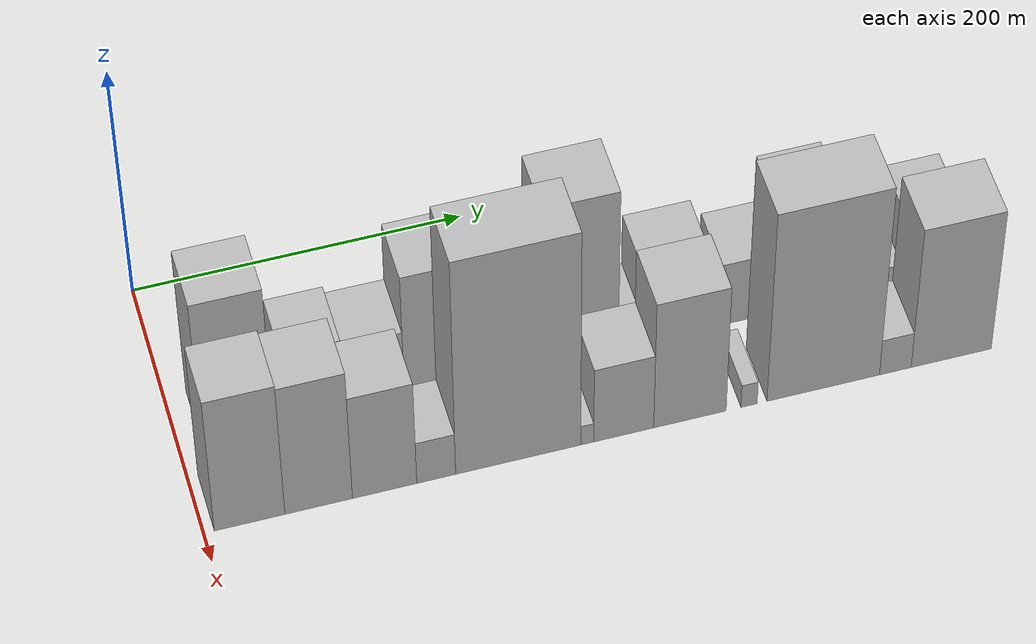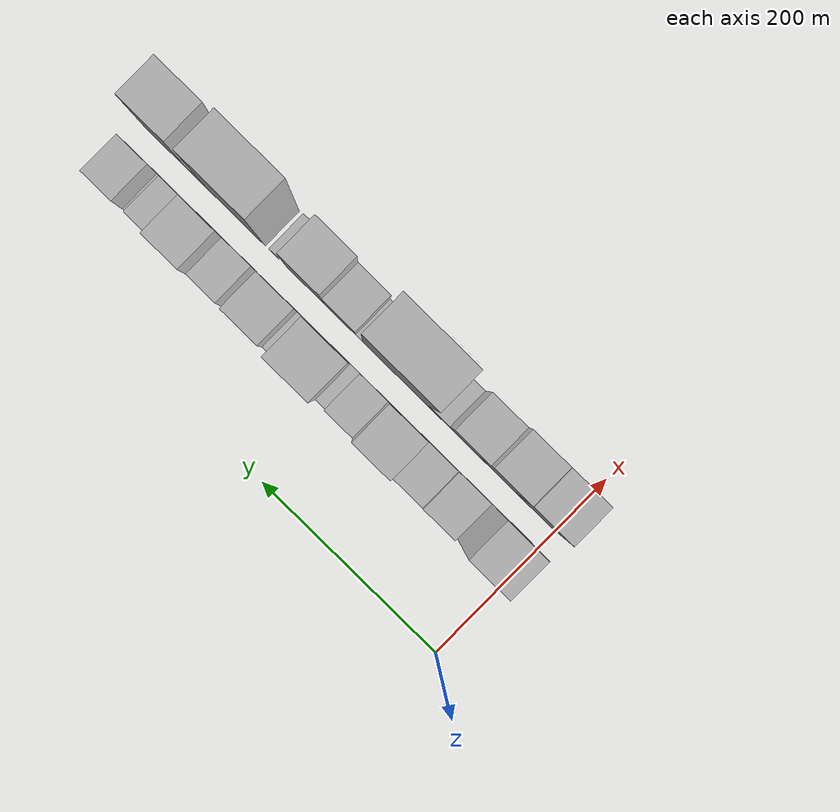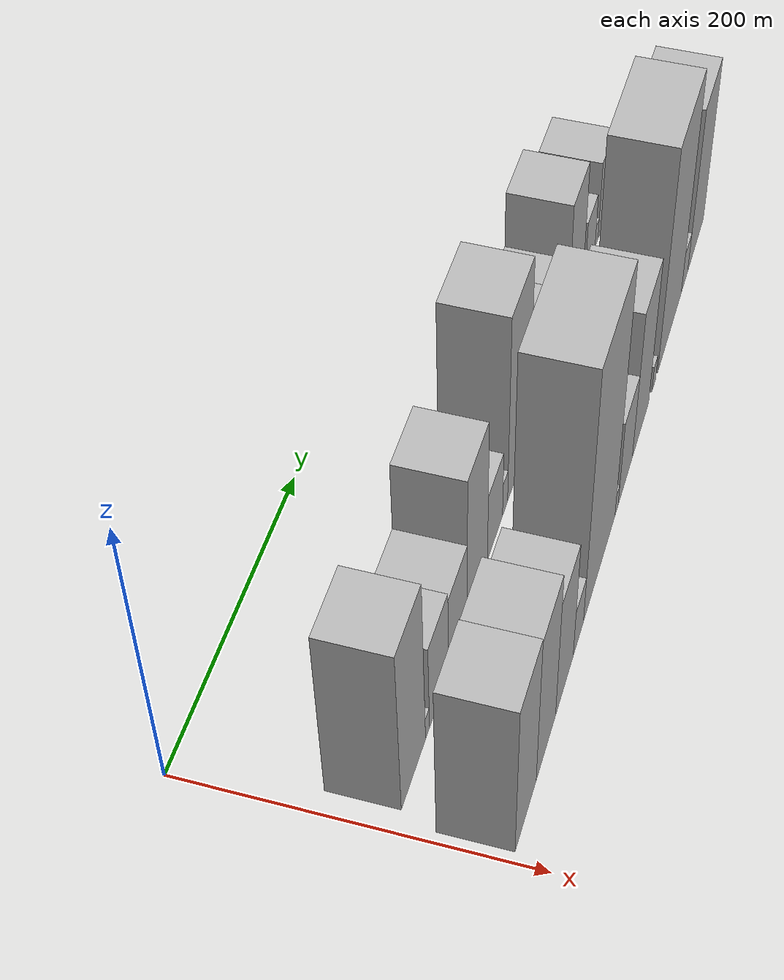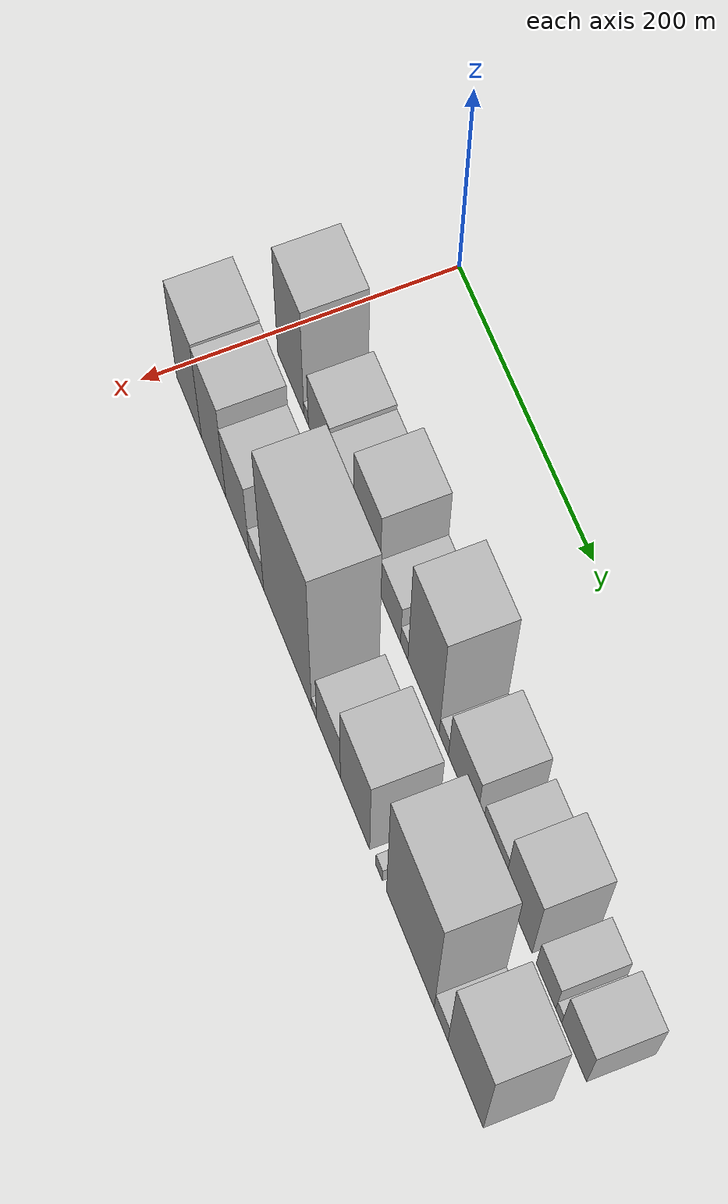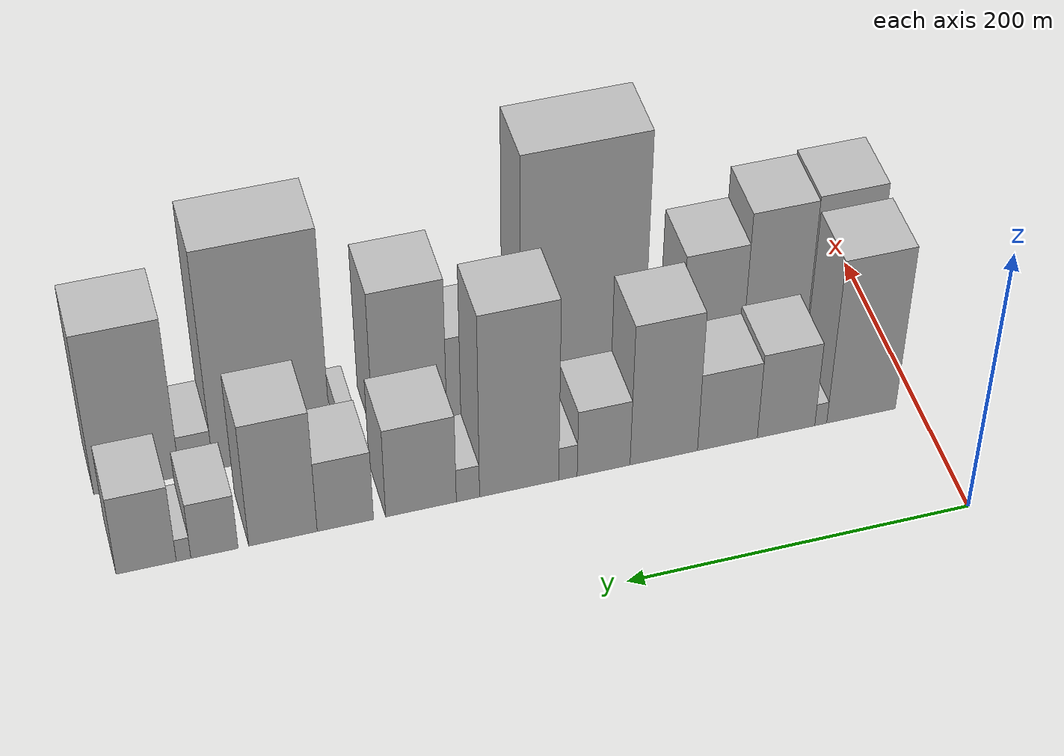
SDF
<sdf version="1.6">
 <world name="default">
  <model name="building_12">
   <static>1</static>
   <pose>100.0000 34.3279 0 0.000000 0.000000 0.000000</pose>
   <link name="link">
    <pose>0 0 66.00 0 0 0</pose>
    <collision name="collision"><geometry><box><size>40.0000 42.1152 132.0000</size></box></geometry></collision>
    <visual name="visual">
     <cast_shadows>0</cast_shadows>
     <geometry><box><size>40.0000 42.1152 132.0000</size></box></geometry>
     <material>
      <script>
       <uri>model://HANNAS_wall/materials/scripts</uri>
       <uri>model://HANNAS_wall/materials/textures</uri>
       <name>vrc/HANNAS_wall</name>
      </script>
     </material>
    </visual>
   </link>
  </model>
  <model name="building_13">
   <static>1</static>
   <pose>100.0000 59.0370 0 0.000000 0.000000 0.000000</pose>
   <link name="link">
    <pose>0 0 9.00 0 0 0</pose>
    <collision name="collision"><geometry><box><size>40.0000 7.3032 18.0000</size></box></geometry></collision>
    <visual name="visual">
     <cast_shadows>0</cast_shadows>
     <geometry><box><size>40.0000 7.3032 18.0000</size></box></geometry>
     <material>
      <script>
       <uri>model://HANNAS_wall/materials/scripts</uri>
       <uri>model://HANNAS_wall/materials/textures</uri>
       <name>vrc/HANNAS_wall</name>
      </script>
     </material>
    </visual>
   </link>
  </model>
  <model name="building_14">
   <static>1</static>
   <pose>100.0000 80.1584 0 0.000000 0.000000 0.000000</pose>
   <link name="link">
    <pose>0 0 34.50 0 0 0</pose>
    <collision name="collision"><geometry><box><size>40.0000 34.9397 69.0000</size></box></geometry></collision>
    <visual name="visual">
     <cast_shadows>0</cast_shadows>
     <geometry><box><size>40.0000 34.9397 69.0000</size></box></geometry>
     <material>
      <script>
       <uri>model://HANNAS_wall/materials/scripts</uri>
       <uri>model://HANNAS_wall/materials/textures</uri>
       <name>vrc/HANNAS_wall</name>
      </script>
     </material>
    </visual>
   </link>
  </model>
  <model name="building_15">
   <static>1</static>
   <pose>100.0000 115.6717 0 0.000000 0.000000 0.000000</pose>
   <link name="link">
    <pose>0 0 31.50 0 0 0</pose>
    <collision name="collision"><geometry><box><size>40.0000 36.0867 63.0000</size></box></geometry></collision>
    <visual name="visual">
     <cast_shadows>0</cast_shadows>
     <geometry><box><size>40.0000 36.0867 63.0000</size></box></geometry>
     <material>
      <script>
       <uri>model://HANNAS_wall/materials/scripts</uri>
       <uri>model://HANNAS_wall/materials/textures</uri>
       <name>vrc/HANNAS_wall</name>
      </script>
     </material>
    </visual>
   </link>
  </model>
  <model name="building_16">
   <static>1</static>
   <pose>100.0000 153.8716 0 0.000000 0.000000 0.000000</pose>
   <link name="link">
    <pose>0 0 57.00 0 0 0</pose>
    <collision name="collision"><geometry><box><size>40.0000 40.3131 114.0000</size></box></geometry></collision>
    <visual name="visual">
     <cast_shadows>0</cast_shadows>
     <geometry><box><size>40.0000 40.3131 114.0000</size></box></geometry>
     <material>
      <script>
       <uri>model://HANNAS_wall/materials/scripts</uri>
       <uri>model://HANNAS_wall/materials/textures</uri>
       <name>vrc/HANNAS_wall</name>
      </script>
     </material>
    </visual>
   </link>
  </model>
  <model name="building_17">
   <static>1</static>
   <pose>100.0000 189.6926 0 0.000000 0.000000 0.000000</pose>
   <link name="link">
    <pose>0 0 27.00 0 0 0</pose>
    <collision name="collision"><geometry><box><size>40.0000 31.3289 54.0000</size></box></geometry></collision>
    <visual name="visual">
     <cast_shadows>0</cast_shadows>
     <geometry><box><size>40.0000 31.3289 54.0000</size></box></geometry>
     <material>
      <script>
       <uri>model://HANNAS_wall/materials/scripts</uri>
       <uri>model://HANNAS_wall/materials/textures</uri>
       <name>vrc/HANNAS_wall</name>
      </script>
     </material>
    </visual>
   </link>
  </model>
  <model name="building_18">
   <static>1</static>
   <pose>100.0000 210.8016 0 0.000000 0.000000 0.000000</pose>
   <link name="link">
    <pose>0 0 13.50 0 0 0</pose>
    <collision name="collision"><geometry><box><size>40.0000 10.8892 27.0000</size></box></geometry></collision>
    <visual name="visual">
     <cast_shadows>0</cast_shadows>
     <geometry><box><size>40.0000 10.8892 27.0000</size></box></geometry>
     <material>
      <script>
       <uri>model://HANNAS_wall/materials/scripts</uri>
       <uri>model://HANNAS_wall/materials/textures</uri>
       <name>vrc/HANNAS_wall</name>
      </script>
     </material>
    </visual>
   </link>
  </model>
  <model name="building_19">
   <static>1</static>
   <pose>100.0000 239.4249 0 0.000000 0.000000 0.000000</pose>
   <link name="link">
    <pose>0 0 73.50 0 0 0</pose>
    <collision name="collision"><geometry><box><size>40.0000 46.3573 147.0000</size></box></geometry></collision>
    <visual name="visual">
     <cast_shadows>0</cast_shadows>
     <geometry><box><size>40.0000 46.3573 147.0000</size></box></geometry>
     <material>
      <script>
       <uri>model://HANNAS_wall/materials/scripts</uri>
       <uri>model://HANNAS_wall/materials/textures</uri>
       <name>vrc/HANNAS_wall</name>
      </script>
     </material>
    </visual>
   </link>
  </model>
  <model name="building_20">
   <static>1</static>
   <pose>100.0000 269.3526 0 0.000000 0.000000 0.000000</pose>
   <link name="link">
    <pose>0 0 13.50 0 0 0</pose>
    <collision name="collision"><geometry><box><size>40.0000 13.4980 27.0000</size></box></geometry></collision>
    <visual name="visual">
     <cast_shadows>0</cast_shadows>
     <geometry><box><size>40.0000 13.4980 27.0000</size></box></geometry>
     <material>
      <script>
       <uri>model://HANNAS_wall/materials/scripts</uri>
       <uri>model://HANNAS_wall/materials/textures</uri>
       <name>vrc/HANNAS_wall</name>
      </script>
     </material>
    </visual>
   </link>
  </model>
  <model name="building_21">
   <static>1</static>
   <pose>100.0000 296.5154 0 0.000000 0.000000 0.000000</pose>
   <link name="link">
    <pose>0 0 36.00 0 0 0</pose>
    <collision name="collision"><geometry><box><size>40.0000 40.8278 72.0000</size></box></geometry></collision>
    <visual name="visual">
     <cast_shadows>0</cast_shadows>
     <geometry><box><size>40.0000 40.8278 72.0000</size></box></geometry>
     <material>
      <script>
       <uri>model://HANNAS_wall/materials/scripts</uri>
       <uri>model://HANNAS_wall/materials/textures</uri>
       <name>vrc/HANNAS_wall</name>
      </script>
     </material>
    </visual>
   </link>
  </model>
  <model name="building_22">
   <static>1</static>
   <pose>100.0000 340.0152 0 0.000000 0.000000 0.000000</pose>
   <link name="link">
    <pose>0 0 28.50 0 0 0</pose>
    <collision name="collision"><geometry><box><size>40.0000 32.1717 57.0000</size></box></geometry></collision>
    <visual name="visual">
     <cast_shadows>0</cast_shadows>
     <geometry><box><size>40.0000 32.1717 57.0000</size></box></geometry>
     <material>
      <script>
       <uri>model://HANNAS_wall/materials/scripts</uri>
       <uri>model://HANNAS_wall/materials/textures</uri>
       <name>vrc/HANNAS_wall</name>
      </script>
     </material>
    </visual>
   </link>
  </model>
  <model name="building_23">
   <static>1</static>
   <pose>100.0000 375.5228 0 0.000000 0.000000 0.000000</pose>
   <link name="link">
    <pose>0 0 49.50 0 0 0</pose>
    <collision name="collision"><geometry><box><size>40.0000 38.8435 99.0000</size></box></geometry></collision>
    <visual name="visual">
     <cast_shadows>0</cast_shadows>
     <geometry><box><size>40.0000 38.8435 99.0000</size></box></geometry>
     <material>
      <script>
       <uri>model://HANNAS_wall/materials/scripts</uri>
       <uri>model://HANNAS_wall/materials/textures</uri>
       <name>vrc/HANNAS_wall</name>
      </script>
     </material>
    </visual>
   </link>
  </model>
  <model name="building_24">
   <static>1</static>
   <pose>100.0000 414.2215 0 0.000000 0.000000 0.000000</pose>
   <link name="link">
    <pose>0 0 22.50 0 0 0</pose>
    <collision name="collision"><geometry><box><size>40.0000 26.5538 45.0000</size></box></geometry></collision>
    <visual name="visual">
     <cast_shadows>0</cast_shadows>
     <geometry><box><size>40.0000 26.5538 45.0000</size></box></geometry>
     <material>
      <script>
       <uri>model://HANNAS_wall/materials/scripts</uri>
       <uri>model://HANNAS_wall/materials/textures</uri>
       <name>vrc/HANNAS_wall</name>
      </script>
     </material>
    </visual>
   </link>
  </model>
  <model name="building_25">
   <static>1</static>
   <pose>100.0000 431.5704 0 0.000000 0.000000 0.000000</pose>
   <link name="link">
    <pose>0 0 9.00 0 0 0</pose>
    <collision name="collision"><geometry><box><size>40.0000 8.1441 18.0000</size></box></geometry></collision>
    <visual name="visual">
     <cast_shadows>0</cast_shadows>
     <geometry><box><size>40.0000 8.1441 18.0000</size></box></geometry>
     <material>
      <script>
       <uri>model://HANNAS_wall/materials/scripts</uri>
       <uri>model://HANNAS_wall/materials/textures</uri>
       <name>vrc/HANNAS_wall</name>
      </script>
     </material>
    </visual>
   </link>
  </model>
  <model name="building_26">
   <static>1</static>
   <pose>100.0000 452.4295 0 0.000000 0.000000 0.000000</pose>
   <link name="link">
    <pose>0 0 31.50 0 0 0</pose>
    <collision name="collision"><geometry><box><size>40.0000 33.5740 63.0000</size></box></geometry></collision>
    <visual name="visual">
     <cast_shadows>0</cast_shadows>
     <geometry><box><size>40.0000 33.5740 63.0000</size></box></geometry>
     <material>
      <script>
       <uri>model://HANNAS_wall/materials/scripts</uri>
       <uri>model://HANNAS_wall/materials/textures</uri>
       <name>vrc/HANNAS_wall</name>
      </script>
     </material>
    </visual>
   </link>
  </model>
  <model name="building_41">
   <static>1</static>
   <pose>160.0000 26.7017 0 0.000000 0.000000 0.000000</pose>
   <link name="link">
    <pose>0 0 61.50 0 0 0</pose>
    <collision name="collision"><geometry><box><size>40.0000 41.2031 123.0000</size></box></geometry></collision>
    <visual name="visual">
     <cast_shadows>0</cast_shadows>
     <geometry><box><size>40.0000 41.2031 123.0000</size></box></geometry>
     <material>
      <script>
       <uri>model://HANNAS_wall/materials/scripts</uri>
       <uri>model://HANNAS_wall/materials/textures</uri>
       <name>vrc/HANNAS_wall</name>
      </script>
     </material>
    </visual>
   </link>
  </model>
  <model name="building_42">
   <static>1</static>
   <pose>160.0000 67.1259 0 0.000000 0.000000 0.000000</pose>
   <link name="link">
    <pose>0 0 60.00 0 0 0</pose>
    <collision name="collision"><geometry><box><size>40.0000 39.6454 120.0000</size></box></geometry></collision>
    <visual name="visual">
     <cast_shadows>0</cast_shadows>
     <geometry><box><size>40.0000 39.6454 120.0000</size></box></geometry>
     <material>
      <script>
       <uri>model://HANNAS_wall/materials/scripts</uri>
       <uri>model://HANNAS_wall/materials/textures</uri>
       <name>vrc/HANNAS_wall</name>
      </script>
     </material>
    </visual>
   </link>
  </model>
  <model name="building_43">
   <static>1</static>
   <pose>160.0000 105.9053 0 0.000000 0.000000 0.000000</pose>
   <link name="link">
    <pose>0 0 48.00 0 0 0</pose>
    <collision name="collision"><geometry><box><size>40.0000 37.9134 96.0000</size></box></geometry></collision>
    <visual name="visual">
     <cast_shadows>0</cast_shadows>
     <geometry><box><size>40.0000 37.9134 96.0000</size></box></geometry>
     <material>
      <script>
       <uri>model://HANNAS_wall/materials/scripts</uri>
       <uri>model://HANNAS_wall/materials/textures</uri>
       <name>vrc/HANNAS_wall</name>
      </script>
     </material>
    </visual>
   </link>
  </model>
  <model name="building_44">
   <static>1</static>
   <pose>160.0000 136.3517 0 0.000000 0.000000 0.000000</pose>
   <link name="link">
    <pose>0 0 19.50 0 0 0</pose>
    <collision name="collision"><geometry><box><size>40.0000 22.9793 39.0000</size></box></geometry></collision>
    <visual name="visual">
     <cast_shadows>0</cast_shadows>
     <geometry><box><size>40.0000 22.9793 39.0000</size></box></geometry>
     <material>
      <script>
       <uri>model://HANNAS_wall/materials/scripts</uri>
       <uri>model://HANNAS_wall/materials/textures</uri>
       <name>vrc/HANNAS_wall</name>
      </script>
     </material>
    </visual>
   </link>
  </model>
  <model name="building_45">
   <static>1</static>
   <pose>160.0000 185.0924 0 0.000000 0.000000 0.000000</pose>
   <link name="link">
    <pose>0 0 99.00 0 0 0</pose>
    <collision name="collision"><geometry><box><size>40.0000 74.5020 198.0000</size></box></geometry></collision>
    <visual name="visual">
     <cast_shadows>0</cast_shadows>
     <geometry><box><size>40.0000 74.5020 198.0000</size></box></geometry>
     <material>
      <script>
       <uri>model://HANNAS_wall/materials/scripts</uri>
       <uri>model://HANNAS_wall/materials/textures</uri>
       <name>vrc/HANNAS_wall</name>
      </script>
     </material>
    </visual>
   </link>
  </model>
  <model name="building_46">
   <static>1</static>
   <pose>160.0000 226.2296 0 0.000000 0.000000 0.000000</pose>
   <link name="link">
    <pose>0 0 9.00 0 0 0</pose>
    <collision name="collision"><geometry><box><size>40.0000 7.7724 18.0000</size></box></geometry></collision>
    <visual name="visual">
     <cast_shadows>0</cast_shadows>
     <geometry><box><size>40.0000 7.7724 18.0000</size></box></geometry>
     <material>
      <script>
       <uri>model://HANNAS_wall/materials/scripts</uri>
       <uri>model://HANNAS_wall/materials/textures</uri>
       <name>vrc/HANNAS_wall</name>
      </script>
     </material>
    </visual>
   </link>
  </model>
  <model name="building_47">
   <static>1</static>
   <pose>160.0000 248.1094 0 0.000000 0.000000 0.000000</pose>
   <link name="link">
    <pose>0 0 34.50 0 0 0</pose>
    <collision name="collision"><geometry><box><size>40.0000 35.9873 69.0000</size></box></geometry></collision>
    <visual name="visual">
     <cast_shadows>0</cast_shadows>
     <geometry><box><size>40.0000 35.9873 69.0000</size></box></geometry>
     <material>
      <script>
       <uri>model://HANNAS_wall/materials/scripts</uri>
       <uri>model://HANNAS_wall/materials/textures</uri>
       <name>vrc/HANNAS_wall</name>
      </script>
     </material>
    </visual>
   </link>
  </model>
  <model name="building_48">
   <static>1</static>
   <pose>160.0000 287.9173 0 0.000000 0.000000 0.000000</pose>
   <link name="link">
    <pose>0 0 58.50 0 0 0</pose>
    <collision name="collision"><geometry><box><size>40.0000 43.6284 117.0000</size></box></geometry></collision>
    <visual name="visual">
     <cast_shadows>0</cast_shadows>
     <geometry><box><size>40.0000 43.6284 117.0000</size></box></geometry>
     <material>
      <script>
       <uri>model://HANNAS_wall/materials/scripts</uri>
       <uri>model://HANNAS_wall/materials/textures</uri>
       <name>vrc/HANNAS_wall</name>
      </script>
     </material>
    </visual>
   </link>
  </model>
  <model name="building_49">
   <static>1</static>
   <pose>160.0000 323.6084 0 0.000000 0.000000 0.000000</pose>
   <link name="link">
    <pose>0 0 10.50 0 0 0</pose>
    <collision name="collision"><geometry><box><size>40.0000 9.7539 21.0000</size></box></geometry></collision>
    <visual name="visual">
     <cast_shadows>0</cast_shadows>
     <geometry><box><size>40.0000 9.7539 21.0000</size></box></geometry>
     <material>
      <script>
       <uri>model://HANNAS_wall/materials/scripts</uri>
       <uri>model://HANNAS_wall/materials/textures</uri>
       <name>vrc/HANNAS_wall</name>
      </script>
     </material>
    </visual>
   </link>
  </model>
  <model name="building_50">
   <static>1</static>
   <pose>160.0000 368.7352 0 0.000000 0.000000 0.000000</pose>
   <link name="link">
    <pose>0 0 87.00 0 0 0</pose>
    <collision name="collision"><geometry><box><size>40.0000 68.4997 174.0000</size></box></geometry></collision>
    <visual name="visual">
     <cast_shadows>0</cast_shadows>
     <geometry><box><size>40.0000 68.4997 174.0000</size></box></geometry>
     <material>
      <script>
       <uri>model://HANNAS_wall/materials/scripts</uri>
       <uri>model://HANNAS_wall/materials/textures</uri>
       <name>vrc/HANNAS_wall</name>
      </script>
     </material>
    </visual>
   </link>
  </model>
  <model name="building_51">
   <static>1</static>
   <pose>160.0000 412.6827 0 0.000000 0.000000 0.000000</pose>
   <link name="link">
    <pose>0 0 16.50 0 0 0</pose>
    <collision name="collision"><geometry><box><size>40.0000 19.3952 33.0000</size></box></geometry></collision>
    <visual name="visual">
     <cast_shadows>0</cast_shadows>
     <geometry><box><size>40.0000 19.3952 33.0000</size></box></geometry>
     <material>
      <script>
       <uri>model://HANNAS_wall/materials/scripts</uri>
       <uri>model://HANNAS_wall/materials/textures</uri>
       <name>vrc/HANNAS_wall</name>
      </script>
     </material>
    </visual>
   </link>
  </model>
  <model name="building_52">
   <static>1</static>
   <pose>160.0000 446.9634 0 0.000000 0.000000 0.000000</pose>
   <link name="link">
    <pose>0 0 64.50 0 0 0</pose>
    <collision name="collision"><geometry><box><size>40.0000 49.1662 129.0000</size></box></geometry></collision>
    <visual name="visual">
     <cast_shadows>0</cast_shadows>
     <geometry><box><size>40.0000 49.1662 129.0000</size></box></geometry>
     <material>
      <script>
       <uri>model://HANNAS_wall/materials/scripts</uri>
       <uri>model://HANNAS_wall/materials/textures</uri>
       <name>vrc/HANNAS_wall</name>
      </script>
     </material>
    </visual>
   </link>
  </model>
 </world>
</sdf>
